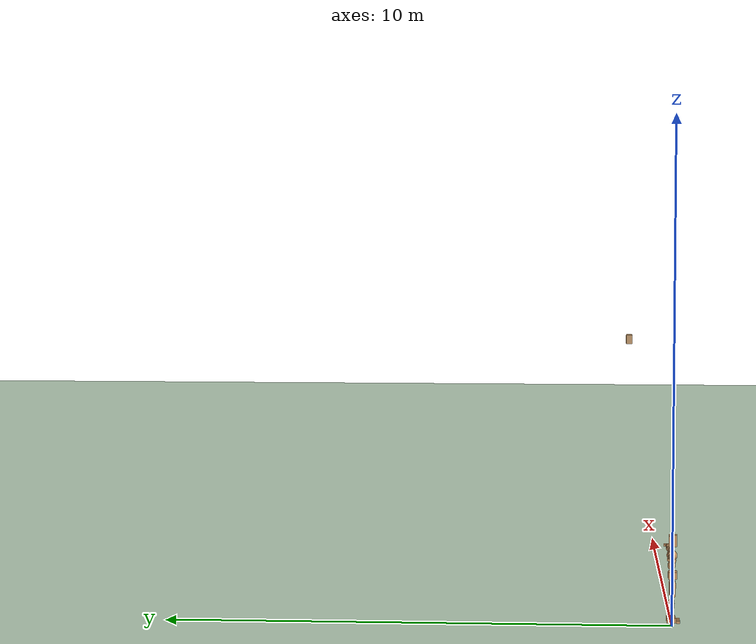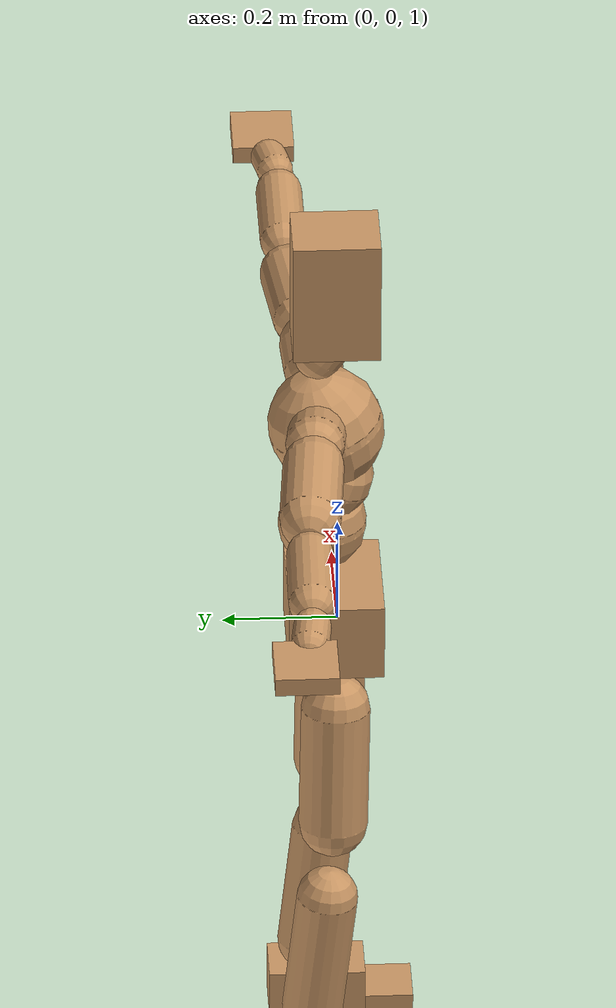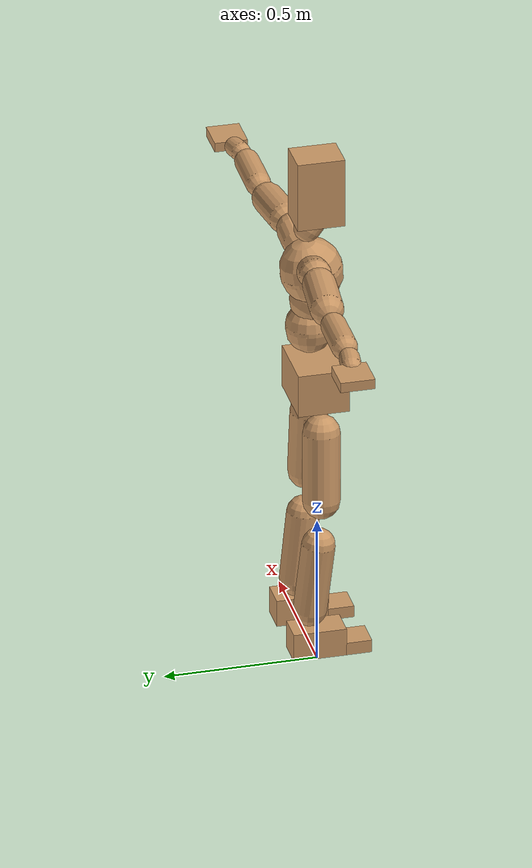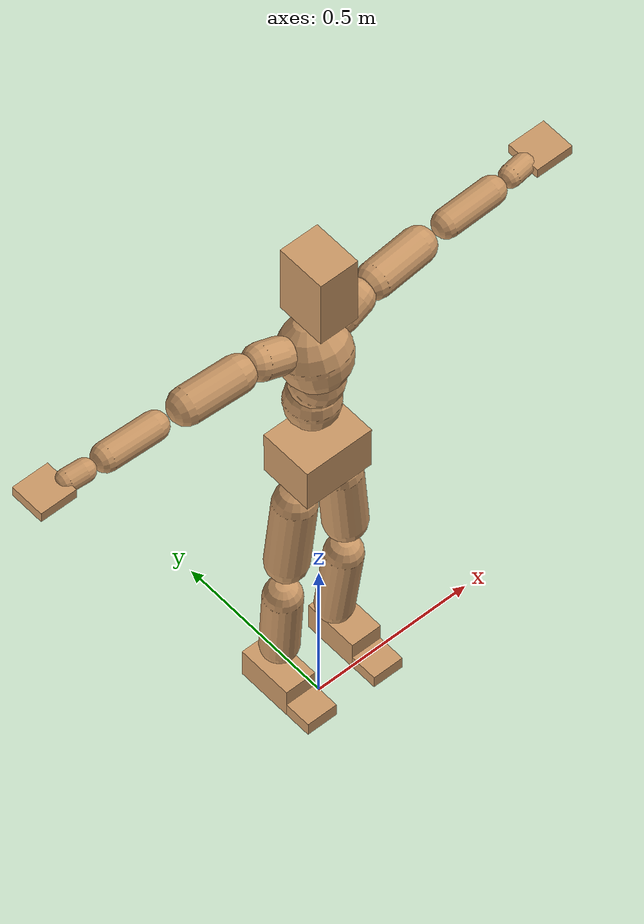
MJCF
<mujoco model="humanoid">
  <compiler coordinate="local" angle="degree" />
  <default>
    <joint damping="0.0" armature="0.01" stiffness="0.0" limited="true" />
    <geom conaffinity="1" condim="3" contype="1" margin="0.001" rgba="0.8 0.6 .4 1" friction="1.5 0.1 0.3" />
  </default>
  <asset>
    <texture type="skybox" builtin="gradient" rgb1=".4 .5 .6" rgb2="0 0 0" width="100" height="100" />
    <texture builtin="flat" height="1278" mark="cross" markrgb="1 1 1" name="texgeom" random="0.01" rgb1="0.8 0.6 0.4" rgb2="0.8 0.6 0.4" type="cube" width="127" />
    <texture builtin="checker" height="100" name="texplane" rgb1="0 0 0" rgb2="0.8 0.8 0.8" type="2d" width="100" />
    <material name="MatPlane" reflectance="0.5" shininess="1" specular="1" texrepeat="60 60" texture="texplane" />
    <material name="geom" texture="texgeom" texuniform="true" />
  </asset>
  <worldbody>
    <light cutoff="100" diffuse="1 1 1" dir="-0 0 -1.3" directional="true" exponent="1" pos="0 0 1.3" specular=".1 .1 .1" />
    <geom conaffinity="1" condim="3" name="floor" pos="0 0 0" rgba="0.8 0.9 0.8 1" size="100 100 .2" type="plane" material="MatPlane" friction="0.5 0.1 0.1" contype="1" />
    <body name="Pelvis" pos="0 0 1.0289" quat="0.707107 0.707107 0 0">
      <freejoint name="Pelvis" />
      <geom type="box" pos="-0.0000 -0.0121 -0.0055" size="0.1069 0.0722 0.083" quat="1.0000 0.0000 0.0000 0.0000" density="3165.830095" name="Pelvis" contype="1" conaffinity="1" condim="3" friction="1.5 0.1 0.3" />
      <body name="L_Hip" pos="0.0695 -0.0914 -0.0068">
        <joint name="L_Hip_x" type="hinge" pos="0 0 0" axis="1 0 0" user="250 2.5 1 500 10 2" armature="0.15" range="-120.0 30.0" damping="3.0" stiffness="0" limited="true" />
        <joint name="L_Hip_y" type="hinge" pos="0 0 0" axis="0 1 0" user="250 2.5 1 500 10 2" armature="0.15" range="-45.0 45.0" damping="3.0" stiffness="0" limited="true" />
        <joint name="L_Hip_z" type="hinge" pos="0 0 0" axis="0 0 1" user="250 2.5 1 500 10 2" armature="0.15" range="-45.0 45.0" damping="3.0" stiffness="0" limited="true" />
        <geom type="capsule" contype="1" conaffinity="1" density="2040.816327" fromto="0.0069 -0.0750 -0.0009 0.0274 -0.3002 -0.0036" size="0.0615" name="L_Hip" condim="3" friction="1.5 0.1 0.3" />
        <body name="L_Knee" pos="0.0343 -0.3752 -0.0045">
          <joint name="L_Knee_x" type="hinge" pos="0 0 0" axis="1 0 0" user="250 2.5 1 500 10 2" armature="0.15" range="0.0 135.0" damping="3.0" stiffness="0" limited="true" />
          <geom type="capsule" contype="1" conaffinity="1" density="1234.567901" fromto="-0.0027 -0.0796 -0.0087 -0.0109 -0.3184 -0.0350" size="0.0541" name="L_Knee" condim="3" friction="1.5 0.1 0.3" />
          <body name="L_Ankle" pos="-0.0136 -0.398 -0.0437">
            <joint name="L_Ankle_x" type="hinge" pos="0 0 0" axis="1 0 0" user="150 2.5 1 500 10 2" armature="0.15" range="-20.0 50.0" damping="3.0" stiffness="0" limited="true" />
            <joint name="L_Ankle_y" type="hinge" pos="0 0 0" axis="0 1 0" user="150 2.5 1 500 10 2" armature="0.15" range="-15.0 15.0" damping="3.0" stiffness="0" limited="true" />
            <joint name="L_Ankle_z" type="hinge" pos="0 0 0" axis="0 0 1" user="150 2.5 1 500 10 2" armature="0.15" range="-15.0 15.0" damping="3.0" stiffness="0" limited="true" />
            <geom type="box" pos="0.0233 -0.0239 0.0242" size="0.0483 0.0464 0.085" quat="1.0000 0.0000 0.0000 0.0000" density="449.071569" name="L_Ankle" contype="1" conaffinity="1" condim="3" friction="1.5 0.1 0.3" />
            <body name="L_Toe" pos="0.0264 -0.0558 0.1193">
              <joint name="L_Toe_x" type="hinge" pos="0 0 0" axis="1 0 0" user="150 1 1 500 1 1" armature="0.15" range="-40.0 40.0" damping="3.0" stiffness="0" limited="true" />
              <geom type="box" pos="-0.0030 0.0055 0.0248" size="0.0478 0.02 0.0496" quat="1.0000 0.0000 0.0000 0.0000" density="423.206892" name="L_Toe" contype="1" conaffinity="1" condim="3" friction="1.5 0.1 0.3" />
            </body>
          </body>
        </body>
      </body>
      <body name="R_Hip" pos="-0.0677 -0.0905 -0.0043">
        <joint name="R_Hip_x" type="hinge" pos="0 0 0" axis="1 0 0" user="250 2.5 1 500 10 2" armature="0.15" range="-120.0 30.0" damping="3.0" stiffness="0" limited="true" />
        <joint name="R_Hip_y" type="hinge" pos="0 0 0" axis="0 1 0" user="250 2.5 1 500 10 2" armature="0.15" range="-45.0 45.0" damping="3.0" stiffness="0" limited="true" />
        <joint name="R_Hip_z" type="hinge" pos="0 0 0" axis="0 0 1" user="250 2.5 1 500 10 2" armature="0.15" range="-45.0 45.0" damping="3.0" stiffness="0" limited="true" />
        <geom type="capsule" contype="1" conaffinity="1" density="2040.816327" fromto="-0.0077 -0.0765 -0.0018 -0.0306 -0.3061 -0.0071" size="0.0606" name="R_Hip" condim="3" friction="1.5 0.1 0.3" />
        <body name="R_Knee" pos="-0.0383 -0.3826 -0.0089">
          <joint name="R_Knee_x" type="hinge" pos="0 0 0" axis="1 0 0" user="250 2.5 1 500 10 2" armature="0.15" range="0.0 135.0" damping="3.0" stiffness="0" limited="true" />
          <geom type="capsule" contype="1" conaffinity="1" density="1234.567901" fromto="0.0032 -0.0797 -0.0085 0.0126 -0.3187 -0.0338" size="0.0541" name="R_Knee" condim="3" friction="1.5 0.1 0.3" />
          <body name="R_Ankle" pos="0.0158 -0.3984 -0.0423">
            <joint name="R_Ankle_x" type="hinge" pos="0 0 0" axis="1 0 0" user="150 1 1 500 10 2" armature="0.15" range="-20.0 50.0" damping="3.0" stiffness="0" limited="true" />
            <joint name="R_Ankle_y" type="hinge" pos="0 0 0" axis="0 1 0" user="150 1 1 500 10 2" armature="0.15" range="-15.0 15.0" damping="3.0" stiffness="0" limited="true" />
            <joint name="R_Ankle_z" type="hinge" pos="0 0 0" axis="0 0 1" user="150 1 1 500 10 2" armature="0.15" range="-15.0 15.0" damping="3.0" stiffness="0" limited="true" />
            <geom type="box" pos="-0.0212 -0.0174 0.0256" size="0.0483 0.0478 0.0865" quat="1.0000 0.0000 0.0000 0.0000" density="434.700981" name="R_Ankle" contype="1" conaffinity="1" condim="3" friction="1.5 0.1 0.3" />
            <body name="R_Toe" pos="-0.0254 -0.0481 0.1233">
              <joint name="R_Toe_x" type="hinge" pos="0 0 0" axis="1 0 0" user="150 1 1 500 1 1" armature="0.15" range="-40.0 40.0" damping="3.0" stiffness="0" limited="true" />
              <geom type="box" pos="0.0042 0.0045 0.0227" size="0.0479 0.0216 0.0493" quat="1.0000 0.0000 0.0000 0.0000" density="407.384095" name="R_Toe" contype="1" conaffinity="1" condim="3" friction="1.5 0.1 0.3" />
            </body>
          </body>
        </body>
      </body>
      <body name="Torso" pos="-0.0025 0.109 -0.0267">
        <joint name="Torso_x" type="hinge" pos="0 0 0" axis="1 0 0" user="500 5 1 500 10 2" armature="0.15" range="-10.0 27.0" damping="3.0" stiffness="0" limited="true" />
        <joint name="Torso_y" type="hinge" pos="0 0 0" axis="0 1 0" user="500 5 1 500 10 2" armature="0.15" range="-15.0 15.0" damping="3.0" stiffness="0" limited="true" />
        <joint name="Torso_z" type="hinge" pos="0 0 0" axis="0 0 1" user="500 5 1 500 10 2" armature="0.15" range="-12.0 12.0" damping="3.0" stiffness="0" limited="true" />
        <geom type="capsule" contype="1" conaffinity="1" density="2040.816327" fromto="0.0025 0.0608 0.0005 0.0030 0.0743 0.0006" size="0.0769" name="Torso" condim="3" friction="1.5 0.1 0.3" />
        <body name="Spine" pos="0.0055 0.1352 0.0011">
          <joint name="Spine_x" type="hinge" pos="0 0 0" axis="1 0 0" user="500 5 1 500 10 2" armature="0.15" range="-10.0 27.0" damping="3.0" stiffness="0" limited="true" />
          <joint name="Spine_y" type="hinge" pos="0 0 0" axis="0 1 0" user="500 5 1 500 10 2" armature="0.15" range="-15.0 15.0" damping="3.0" stiffness="0" limited="true" />
          <joint name="Spine_z" type="hinge" pos="0 0 0" axis="0 0 1" user="500 5 1 500 10 2" armature="0.15" range="-12.0 12.0" damping="3.0" stiffness="0" limited="true" />
          <geom type="capsule" contype="1" conaffinity="1" density="2040.816327" fromto="0.0007 0.0238 0.0114 0.0008 0.0291 0.0140" size="0.0755" name="Spine" condim="3" friction="1.5 0.1 0.3" />
          <body name="Chest" pos="0.0015 0.0529 0.0254">
            <joint name="Chest_x" type="hinge" pos="0 0 0" axis="1 0 0" user="500 5 1 500 10 2" armature="0.15" range="-10.0 27.0" damping="3.0" stiffness="0" limited="true" />
            <joint name="Chest_y" type="hinge" pos="0 0 0" axis="0 1 0" user="500 5 1 500 10 2" armature="0.15" range="-15.0 15.0" damping="3.0" stiffness="0" limited="true" />
            <joint name="Chest_z" type="hinge" pos="0 0 0" axis="0 0 1" user="500 5 1 500 10 2" armature="0.15" range="-12.0 12.0" damping="3.0" stiffness="0" limited="true" />
            <geom type="capsule" contype="1" conaffinity="1" density="2040.816327" fromto="-0.0009 0.0682 -0.0173 -0.0010 0.0833 -0.0212" size="0.1002" name="Chest" condim="3" friction="1.5 0.1 0.3" />
            <body name="Neck" pos="-0.0028 0.2139 -0.0429">
              <joint name="Neck_x" type="hinge" pos="0 0 0" axis="1 0 0" user="150 1 1 250 50 4" armature="0.15" range="-30.0 35.0" damping="3.0" stiffness="0" limited="true" />
              <joint name="Neck_y" type="hinge" pos="0 0 0" axis="0 1 0" user="150 1 1 250 50 4" armature="0.15" range="-40.0 40.0" damping="3.0" stiffness="0" limited="true" />
              <joint name="Neck_z" type="hinge" pos="0 0 0" axis="0 0 1" user="150 1 1 250 50 4" armature="0.15" range="-22.0 22.0" damping="3.0" stiffness="0" limited="true" />
              <geom type="capsule" contype="1" conaffinity="1" density="1000" fromto="0.0010 0.0130 0.0103 0.0041 0.0520 0.0411" size="0.0436" name="Neck" condim="3" friction="1.5 0.1 0.3" />
              <body name="Head" pos="0.0052 0.065 0.0513">
                <joint name="Head_x" type="hinge" pos="0 0 0" axis="1 0 0" user="150 1 1 250 50 4" armature="0.15" range="-30.0 35.0" damping="3.0" stiffness="0" limited="true" />
                <joint name="Head_y" type="hinge" pos="0 0 0" axis="0 1 0" user="150 1 1 250 50 4" armature="0.15" range="-40.0 40.0" damping="3.0" stiffness="0" limited="true" />
                <joint name="Head_z" type="hinge" pos="0 0 0" axis="0 0 1" user="150 1 1 250 50 4" armature="0.15" range="-22.0 22.0" damping="3.0" stiffness="0" limited="true" />
                <geom type="box" pos="-0.0042 0.0876 -0.0116" size="0.0606 0.1154 0.076" quat="1.0000 0.0000 0.0000 0.0000" density="1018.069894" name="Head" contype="1" conaffinity="1" condim="3" friction="1.5 0.1 0.3" />
              </body>
            </body>
            <body name="L_Thorax" pos="0.0788 0.1217 -0.0341">
              <joint name="L_Thorax_x" type="hinge" pos="0 0 0" axis="1 0 0" user="200 2 1 500 50 4" armature="0.15" range="-20.0 20.0" damping="3.0" stiffness="0" limited="true" />
              <joint name="L_Thorax_y" type="hinge" pos="0 0 0" axis="0 1 0" user="200 2 1 500 50 4" armature="0.15" range="-20.0 20.0" damping="3.0" stiffness="0" limited="true" />
              <joint name="L_Thorax_z" type="hinge" pos="0 0 0" axis="0 0 1" user="200 2 1 500 50 4" armature="0.15" range="-20.0 20.0" damping="3.0" stiffness="0" limited="true" />
              <geom type="capsule" contype="1" conaffinity="1" density="1000" fromto="0.0182 0.0061 -0.0018 0.0728 0.0244 -0.0071" size="0.0521" name="L_Thorax" condim="3" friction="1.5 0.1 0.3" />
              <body name="L_Shoulder" pos="0.091 0.0305 -0.0089">
                <joint name="L_Shoulder_x" type="hinge" pos="0 0 0" axis="1 0 0" user="200 2 1 500 50 4" armature="0.15" range="-80.0 80.0" damping="3.0" stiffness="0" limited="true" />
                <joint name="L_Shoulder_y" type="hinge" pos="0 0 0" axis="0 1 0" user="200 2 1 500 50 4" armature="0.15" range="-120.0 10.0" damping="3.0" stiffness="0" limited="true" />
                <joint name="L_Shoulder_z" type="hinge" pos="0 0 0" axis="0 0 1" user="200 2 1 500 50 4" armature="0.15" range="-90.0 10.0" damping="3.0" stiffness="0" limited="true" />
                <geom type="capsule" contype="1" conaffinity="1" density="1000" fromto="0.0519 -0.0026 -0.0055 0.2077 -0.0102 -0.0220" size="0.0517" name="L_Shoulder" condim="3" friction="1.5 0.1 0.3" />
                <body name="L_Elbow" pos="0.2596 -0.0128 -0.0275">
                  <joint name="L_Elbow_y" type="hinge" pos="0 0 0" axis="0 1 0" user="150 1 1 150 10 2" armature="0.15" range="-150.0 0.0" damping="3.0" stiffness="0" limited="true" />
                  <geom type="capsule" contype="1" conaffinity="1" density="1000" fromto="0.0498 0.0018 -0.0002 0.1994 0.0072 -0.0009" size="0.0405" name="L_Elbow" condim="3" friction="1.5 0.1 0.3" />
                  <body name="L_Wrist" pos="0.2492 0.009 -0.0012">
                    <joint name="L_Wrist_x" type="hinge" pos="0 0 0" axis="1 0 0" user="100 1 1 150 1 1" armature="0.15" range="-80.0 80.0" damping="3.0" stiffness="0" limited="true" />
                    <joint name="L_Wrist_y" type="hinge" pos="0 0 0" axis="0 1 0" user="100 1 1 150 1 1" armature="0.15" range="-80.0 70.0" damping="3.0" stiffness="0" limited="true" />
                    <joint name="L_Wrist_z" type="hinge" pos="0 0 0" axis="0 0 1" user="100 1 1 150 1 1" armature="0.15" range="-20.0 20.0" damping="3.0" stiffness="0" limited="true" />
                    <geom type="capsule" contype="1" conaffinity="1" density="1000" fromto="0.0168 -0.0016 -0.0030 0.0672 -0.0065 -0.0120" size="0.0318" name="L_Wrist" condim="3" friction="1.5 0.1 0.3" />
                    <body name="L_Hand" pos="0.084 -0.0082 -0.0149">
                      <joint name="L_Hand_x" type="hinge" pos="0 0 0" axis="1 0 0" user="50 1 1 150 1 1" armature="0.15" range="-5.0 5.0" damping="3.0" stiffness="0" limited="true" />
                      <joint name="L_Hand_y" type="hinge" pos="0 0 0" axis="0 1 0" user="50 1 1 150 1 1" armature="0.15" range="-15.0 15.0" damping="3.0" stiffness="0" limited="true" />
                      <joint name="L_Hand_z" type="hinge" pos="0 0 0" axis="0 0 1" user="50 1 1 150 1 1" armature="0.15" range="-10.0 10.0" damping="3.0" stiffness="0" limited="true" />
                      <geom type="box" pos="0.0493 0.0010 -0.0058" size="0.0585 0.0158 0.0538" quat="1.0000 0.0000 0.0000 0.0000" density="400.552564" name="L_Hand" contype="1" conaffinity="1" condim="3" friction="1.5 0.1 0.3" />
                    </body>
                  </body>
                </body>
              </body>
            </body>
            <body name="R_Thorax" pos="-0.0818 0.1188 -0.0386">
              <joint name="R_Thorax_x" type="hinge" pos="0 0 0" axis="1 0 0" user="200 2 1 150 10 2" armature="0.15" range="-20.0 20.0" damping="3.0" stiffness="0" limited="true" />
              <joint name="R_Thorax_y" type="hinge" pos="0 0 0" axis="0 1 0" user="200 2 1 150 10 2" armature="0.15" range="-20.0 20.0" damping="3.0" stiffness="0" limited="true" />
              <joint name="R_Thorax_z" type="hinge" pos="0 0 0" axis="0 0 1" user="200 2 1 150 10 2" armature="0.15" range="-20.0 20.0" damping="3.0" stiffness="0" limited="true" />
              <geom type="capsule" contype="1" conaffinity="1" density="1000" fromto="-0.0192 0.0065 -0.0018 -0.0768 0.0260 -0.0073" size="0.0511" name="R_Thorax" condim="3" friction="1.5 0.1 0.3" />
              <body name="R_Shoulder" pos="-0.096 0.0326 -0.0091">
                <joint name="R_Shoulder_x" type="hinge" pos="0 0 0" axis="1 0 0" user="200 2 1 250 10 2" armature="0.15" range="-80.0 80.0" damping="3.0" stiffness="0" limited="true" />
                <joint name="R_Shoulder_y" type="hinge" pos="0 0 0" axis="0 1 0" user="200 2 1 250 10 2" armature="0.15" range="-10.0 120.0" damping="3.0" stiffness="0" limited="true" />
                <joint name="R_Shoulder_z" type="hinge" pos="0 0 0" axis="0 0 1" user="200 2 1 250 10 2" armature="0.15" range="-10.0 90.0" damping="3.0" stiffness="0" limited="true" />
                <geom type="capsule" contype="1" conaffinity="1" density="1000" fromto="-0.0507 -0.0027 -0.0043 -0.2030 -0.0107 -0.0171" size="0.0531" name="R_Shoulder" condim="3" friction="1.5 0.1 0.3" />
                <body name="R_Elbow" pos="-0.2537 -0.0133 -0.0214">
                  <joint name="R_Elbow_y" type="hinge" pos="0 0 0" axis="0 1 0" user="150 1 1 150 10 2" armature="0.15" range="0.0 150.0" damping="3.0" stiffness="0" limited="true" />
                  <geom type="capsule" contype="1" conaffinity="1" density="1000" fromto="-0.0511 0.0016 -0.0011 -0.2042 0.0062 -0.0044" size="0.0408" name="R_Elbow" condim="3" friction="1.5 0.1 0.3" />
                  <body name="R_Wrist" pos="-0.2553 0.0078 -0.0056">
                    <joint name="R_Wrist_x" type="hinge" pos="0 0 0" axis="1 0 0" user="100 1 1 150 1 1" armature="0.15" range="-80.0 80.0" damping="3.0" stiffness="0" limited="true" />
                    <joint name="R_Wrist_y" type="hinge" pos="0 0 0" axis="0 1 0" user="100 1 1 150 1 1" armature="0.15" range="-70.0 80.0" damping="3.0" stiffness="0" limited="true" />
                    <joint name="R_Wrist_z" type="hinge" pos="0 0 0" axis="0 0 1" user="100 1 1 150 1 1" armature="0.15" range="-20.0 20.0" damping="3.0" stiffness="0" limited="true" />
                    <geom type="capsule" contype="1" conaffinity="1" density="1000" fromto="-0.0169 -0.0012 -0.0021 -0.0677 -0.0049 -0.0083" size="0.0326" name="R_Wrist" condim="3" friction="1.5 0.1 0.3" />
                    <body name="R_Hand" pos="-0.0846 -0.0061 -0.0103">
                      <joint name="R_Hand_x" type="hinge" pos="0 0 0" axis="1 0 0" user="50 1 1 150 1 1" armature="0.15" range="-5.0 5.0" damping="3.0" stiffness="0" limited="true" />
                      <joint name="R_Hand_y" type="hinge" pos="0 0 0" axis="0 1 0" user="50 1 1 150 1 1" armature="0.15" range="-15.0 15.0" damping="3.0" stiffness="0" limited="true" />
                      <joint name="R_Hand_z" type="hinge" pos="0 0 0" axis="0 0 1" user="50 1 1 150 1 1" armature="0.15" range="-10.0 10.0" damping="3.0" stiffness="0" limited="true" />
                      <geom type="box" pos="-0.0462 -0.0009 -0.0079" size="0.0569 0.0164 0.0546" quat="1.0000 0.0000 0.0000 0.0000" density="403.679611" name="R_Hand" contype="1" conaffinity="1" condim="3" friction="1.5 0.1 0.3" />
                    </body>
                  </body>
                </body>
              </body>
            </body>
          </body>
        </body>
      </body>
    </body>
  <body name="projectile" pos="30 0 3"><freejoint name="proj_free" /><geom name="proj_box" type="box" size="0.175 0.0901 0.1415" mass="2" friction="1.0 0.1 0.1" rgba="0.76 0.60 0.42 1" contype="1" conaffinity="1" condim="3" /></body></worldbody>
  <actuator>
    <motor name="L_Hip_x" joint="L_Hip_x" gear="200" ctrllimited="true" ctrlrange="-1 1" />
    <motor name="L_Hip_y" joint="L_Hip_y" gear="200" ctrllimited="true" ctrlrange="-1 1" />
    <motor name="L_Hip_z" joint="L_Hip_z" gear="200" ctrllimited="true" ctrlrange="-1 1" />
    <motor name="L_Knee_x" joint="L_Knee_x" gear="200" ctrllimited="true" ctrlrange="-1 1" />
    <motor name="L_Ankle_x" joint="L_Ankle_x" gear="90" ctrllimited="true" ctrlrange="-1 1" />
    <motor name="L_Ankle_y" joint="L_Ankle_y" gear="90" ctrllimited="true" ctrlrange="-1 1" />
    <motor name="L_Ankle_z" joint="L_Ankle_z" gear="90" ctrllimited="true" ctrlrange="-1 1" />
    <motor name="L_Toe_x" joint="L_Toe_x" gear="20" ctrllimited="true" ctrlrange="-1 1" />
    <motor name="R_Hip_x" joint="R_Hip_x" gear="200" ctrllimited="true" ctrlrange="-1 1" />
    <motor name="R_Hip_y" joint="R_Hip_y" gear="200" ctrllimited="true" ctrlrange="-1 1" />
    <motor name="R_Hip_z" joint="R_Hip_z" gear="200" ctrllimited="true" ctrlrange="-1 1" />
    <motor name="R_Knee_x" joint="R_Knee_x" gear="200" ctrllimited="true" ctrlrange="-1 1" />
    <motor name="R_Ankle_x" joint="R_Ankle_x" gear="90" ctrllimited="true" ctrlrange="-1 1" />
    <motor name="R_Ankle_y" joint="R_Ankle_y" gear="90" ctrllimited="true" ctrlrange="-1 1" />
    <motor name="R_Ankle_z" joint="R_Ankle_z" gear="90" ctrllimited="true" ctrlrange="-1 1" />
    <motor name="R_Toe_x" joint="R_Toe_x" gear="20" ctrllimited="true" ctrlrange="-1 1" />
    <motor name="Torso_x" joint="Torso_x" gear="200" ctrllimited="true" ctrlrange="-1 1" />
    <motor name="Torso_y" joint="Torso_y" gear="200" ctrllimited="true" ctrlrange="-1 1" />
    <motor name="Torso_z" joint="Torso_z" gear="200" ctrllimited="true" ctrlrange="-1 1" />
    <motor name="Spine_x" joint="Spine_x" gear="200" ctrllimited="true" ctrlrange="-1 1" />
    <motor name="Spine_y" joint="Spine_y" gear="200" ctrllimited="true" ctrlrange="-1 1" />
    <motor name="Spine_z" joint="Spine_z" gear="200" ctrllimited="true" ctrlrange="-1 1" />
    <motor name="Chest_x" joint="Chest_x" gear="200" ctrllimited="true" ctrlrange="-1 1" />
    <motor name="Chest_y" joint="Chest_y" gear="200" ctrllimited="true" ctrlrange="-1 1" />
    <motor name="Chest_z" joint="Chest_z" gear="200" ctrllimited="true" ctrlrange="-1 1" />
    <motor name="Neck_x" joint="Neck_x" gear="40" ctrllimited="true" ctrlrange="-1 1" />
    <motor name="Neck_y" joint="Neck_y" gear="40" ctrllimited="true" ctrlrange="-1 1" />
    <motor name="Neck_z" joint="Neck_z" gear="40" ctrllimited="true" ctrlrange="-1 1" />
    <motor name="Head_x" joint="Head_x" gear="30" ctrllimited="true" ctrlrange="-1 1" />
    <motor name="Head_y" joint="Head_y" gear="30" ctrllimited="true" ctrlrange="-1 1" />
    <motor name="Head_z" joint="Head_z" gear="30" ctrllimited="true" ctrlrange="-1 1" />
    <motor name="L_Thorax_x" joint="L_Thorax_x" gear="100" ctrllimited="true" ctrlrange="-1 1" />
    <motor name="L_Thorax_y" joint="L_Thorax_y" gear="100" ctrllimited="true" ctrlrange="-1 1" />
    <motor name="L_Thorax_z" joint="L_Thorax_z" gear="100" ctrllimited="true" ctrlrange="-1 1" />
    <motor name="L_Shoulder_x" joint="L_Shoulder_x" gear="90" ctrllimited="true" ctrlrange="-1 1" />
    <motor name="L_Shoulder_y" joint="L_Shoulder_y" gear="90" ctrllimited="true" ctrlrange="-1 1" />
    <motor name="L_Shoulder_z" joint="L_Shoulder_z" gear="90" ctrllimited="true" ctrlrange="-1 1" />
    <motor name="L_Elbow_y" joint="L_Elbow_y" gear="60" ctrllimited="true" ctrlrange="-1 1" />
    <motor name="L_Wrist_x" joint="L_Wrist_x" gear="20" ctrllimited="true" ctrlrange="-1 1" />
    <motor name="L_Wrist_y" joint="L_Wrist_y" gear="20" ctrllimited="true" ctrlrange="-1 1" />
    <motor name="L_Wrist_z" joint="L_Wrist_z" gear="20" ctrllimited="true" ctrlrange="-1 1" />
    <motor name="L_Hand_x" joint="L_Hand_x" gear="10" ctrllimited="true" ctrlrange="-1 1" />
    <motor name="L_Hand_y" joint="L_Hand_y" gear="10" ctrllimited="true" ctrlrange="-1 1" />
    <motor name="L_Hand_z" joint="L_Hand_z" gear="10" ctrllimited="true" ctrlrange="-1 1" />
    <motor name="R_Thorax_x" joint="R_Thorax_x" gear="100" ctrllimited="true" ctrlrange="-1 1" />
    <motor name="R_Thorax_y" joint="R_Thorax_y" gear="100" ctrllimited="true" ctrlrange="-1 1" />
    <motor name="R_Thorax_z" joint="R_Thorax_z" gear="100" ctrllimited="true" ctrlrange="-1 1" />
    <motor name="R_Shoulder_x" joint="R_Shoulder_x" gear="90" ctrllimited="true" ctrlrange="-1 1" />
    <motor name="R_Shoulder_y" joint="R_Shoulder_y" gear="90" ctrllimited="true" ctrlrange="-1 1" />
    <motor name="R_Shoulder_z" joint="R_Shoulder_z" gear="90" ctrllimited="true" ctrlrange="-1 1" />
    <motor name="R_Elbow_y" joint="R_Elbow_y" gear="60" ctrllimited="true" ctrlrange="-1 1" />
    <motor name="R_Wrist_x" joint="R_Wrist_x" gear="20" ctrllimited="true" ctrlrange="-1 1" />
    <motor name="R_Wrist_y" joint="R_Wrist_y" gear="20" ctrllimited="true" ctrlrange="-1 1" />
    <motor name="R_Wrist_z" joint="R_Wrist_z" gear="20" ctrllimited="true" ctrlrange="-1 1" />
    <motor name="R_Hand_x" joint="R_Hand_x" gear="10" ctrllimited="true" ctrlrange="-1 1" />
    <motor name="R_Hand_y" joint="R_Hand_y" gear="10" ctrllimited="true" ctrlrange="-1 1" />
    <motor name="R_Hand_z" joint="R_Hand_z" gear="10" ctrllimited="true" ctrlrange="-1 1" />
  </actuator>
  <contact>
    <exclude body1="Torso" body2="Chest" />
    <exclude body1="Head" body2="Chest" />
    <exclude body1="R_Knee" body2="R_Toe" />
    <exclude body1="R_Knee" body2="L_Ankle" />
    <exclude body1="R_Knee" body2="L_Toe" />
    <exclude body1="L_Knee" body2="L_Toe" />
    <exclude body1="L_Knee" body2="R_Ankle" />
    <exclude body1="L_Knee" body2="R_Toe" />
    <exclude body1="L_Shoulder" body2="Chest" />
    <exclude body1="R_Shoulder" body2="Chest" />
  <exclude body1="Pelvis" body2="L_Ankle" /><exclude body1="Pelvis" body2="L_Toe" /><exclude body1="Pelvis" body2="R_Toe" /><exclude body1="Pelvis" body2="Spine" /><exclude body1="Pelvis" body2="Chest" /><exclude body1="Pelvis" body2="Neck" /><exclude body1="Pelvis" body2="Head" /><exclude body1="Pelvis" body2="L_Thorax" /><exclude body1="Pelvis" body2="R_Thorax" /><exclude body1="L_Hip" body2="L_Ankle" /><exclude body1="L_Hip" body2="L_Toe" /><exclude body1="L_Hip" body2="Spine" /><exclude body1="L_Hip" body2="Neck" /><exclude body1="L_Hip" body2="Head" /><exclude body1="L_Hip" body2="L_Thorax" /><exclude body1="L_Hip" body2="R_Thorax" /><exclude body1="L_Knee" body2="Torso" /><exclude body1="L_Knee" body2="Spine" /><exclude body1="L_Knee" body2="Chest" /><exclude body1="L_Knee" body2="Neck" /><exclude body1="L_Knee" body2="Head" /><exclude body1="L_Knee" body2="L_Thorax" /><exclude body1="L_Knee" body2="R_Thorax" /><exclude body1="L_Ankle" body2="Torso" /><exclude body1="L_Ankle" body2="Spine" /><exclude body1="L_Ankle" body2="Chest" /><exclude body1="L_Ankle" body2="Neck" /><exclude body1="L_Ankle" body2="Head" /><exclude body1="L_Ankle" body2="L_Thorax" /><exclude body1="L_Ankle" body2="L_Shoulder" /><exclude body1="L_Ankle" body2="L_Elbow" /><exclude body1="L_Ankle" body2="R_Thorax" /><exclude body1="L_Ankle" body2="R_Shoulder" /><exclude body1="L_Toe" body2="Torso" /><exclude body1="L_Toe" body2="Spine" /><exclude body1="L_Toe" body2="Chest" /><exclude body1="L_Toe" body2="Neck" /><exclude body1="L_Toe" body2="Head" /><exclude body1="L_Toe" body2="L_Thorax" /><exclude body1="L_Toe" body2="L_Shoulder" /><exclude body1="L_Toe" body2="L_Elbow" /><exclude body1="L_Toe" body2="L_Wrist" /><exclude body1="L_Toe" body2="R_Thorax" /><exclude body1="L_Toe" body2="R_Shoulder" /><exclude body1="R_Hip" body2="R_Ankle" /><exclude body1="R_Hip" body2="R_Toe" /><exclude body1="R_Hip" body2="Chest" /><exclude body1="R_Hip" body2="Neck" /><exclude body1="R_Hip" body2="Head" /><exclude body1="R_Hip" body2="L_Thorax" /><exclude body1="R_Hip" body2="R_Thorax" /><exclude body1="R_Knee" body2="Torso" /><exclude body1="R_Knee" body2="Spine" /><exclude body1="R_Knee" body2="Chest" /><exclude body1="R_Knee" body2="Neck" /><exclude body1="R_Knee" body2="L_Thorax" /><exclude body1="R_Knee" body2="R_Thorax" /><exclude body1="R_Ankle" body2="Torso" /><exclude body1="R_Ankle" body2="Spine" /><exclude body1="R_Ankle" body2="Chest" /><exclude body1="R_Ankle" body2="Neck" /><exclude body1="R_Ankle" body2="Head" /><exclude body1="R_Ankle" body2="L_Thorax" /><exclude body1="R_Ankle" body2="L_Shoulder" /><exclude body1="R_Ankle" body2="L_Elbow" /><exclude body1="R_Ankle" body2="R_Thorax" /><exclude body1="R_Ankle" body2="R_Shoulder" /><exclude body1="R_Ankle" body2="R_Elbow" /><exclude body1="R_Toe" body2="Torso" /><exclude body1="R_Toe" body2="Spine" /><exclude body1="R_Toe" body2="Chest" /><exclude body1="R_Toe" body2="Neck" /><exclude body1="R_Toe" body2="Head" /><exclude body1="R_Toe" body2="L_Thorax" /><exclude body1="R_Toe" body2="L_Shoulder" /><exclude body1="R_Toe" body2="L_Elbow" /><exclude body1="R_Toe" body2="L_Wrist" /><exclude body1="R_Toe" body2="L_Hand" /><exclude body1="R_Toe" body2="R_Thorax" /><exclude body1="R_Toe" body2="R_Shoulder" /><exclude body1="R_Toe" body2="R_Elbow" /><exclude body1="R_Toe" body2="R_Wrist" /><exclude body1="Torso" body2="Neck" /><exclude body1="Torso" body2="Head" /><exclude body1="Torso" body2="L_Thorax" /><exclude body1="Torso" body2="R_Thorax" /><exclude body1="Spine" body2="Neck" /><exclude body1="Spine" body2="Head" /><exclude body1="L_Thorax" body2="R_Thorax" /><exclude body1="L_Thorax" body2="R_Shoulder" /><exclude body1="L_Shoulder" body2="R_Thorax" /></contact>
  <size njmax="700" nconmax="700" />
<option timestep="0.005" gravity="0 0 -9.81" integrator="implicitfast" iterations="50" solver="Newton" cone="pyramidal" /></mujoco>
